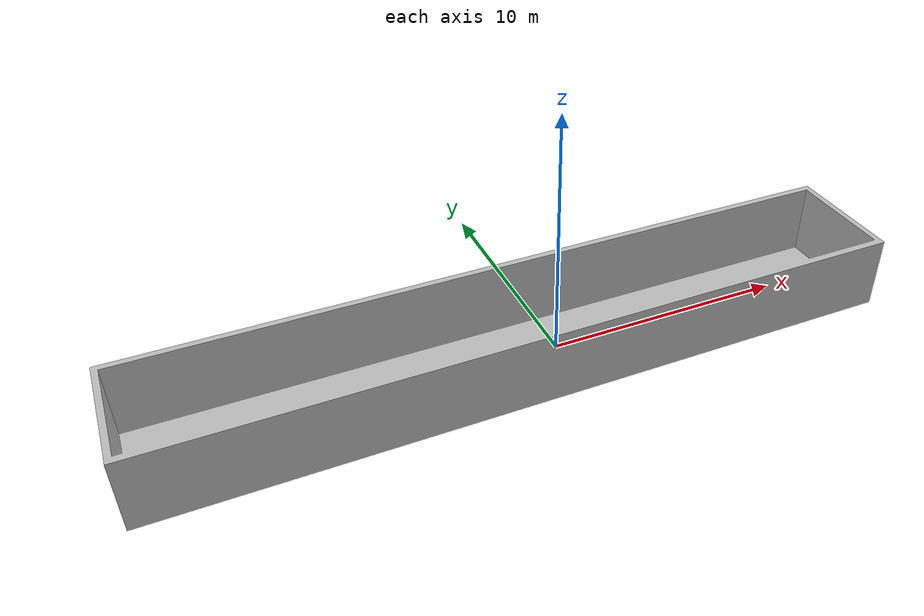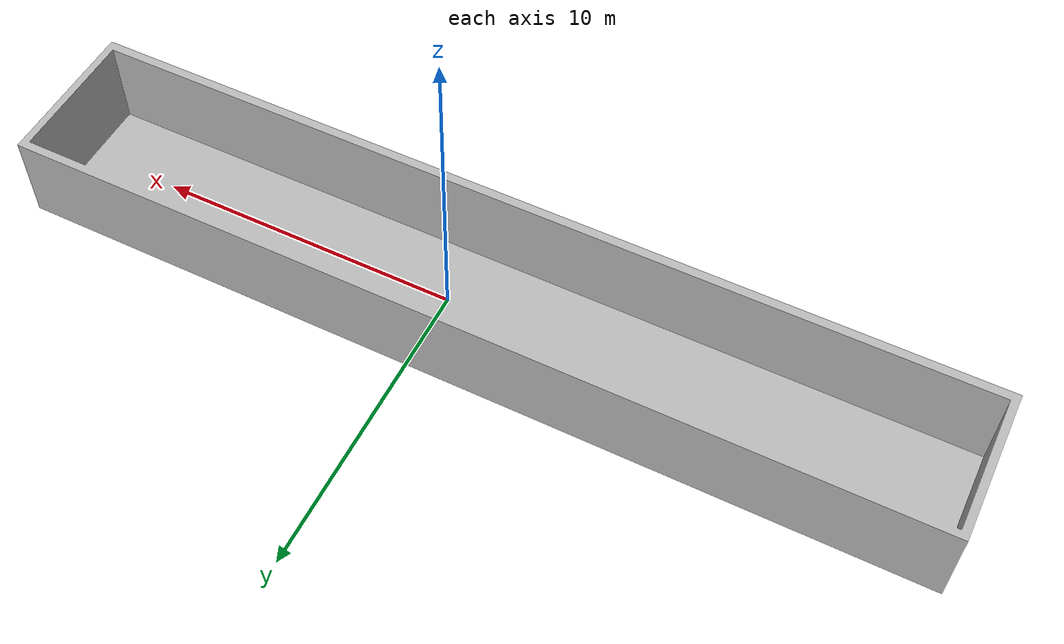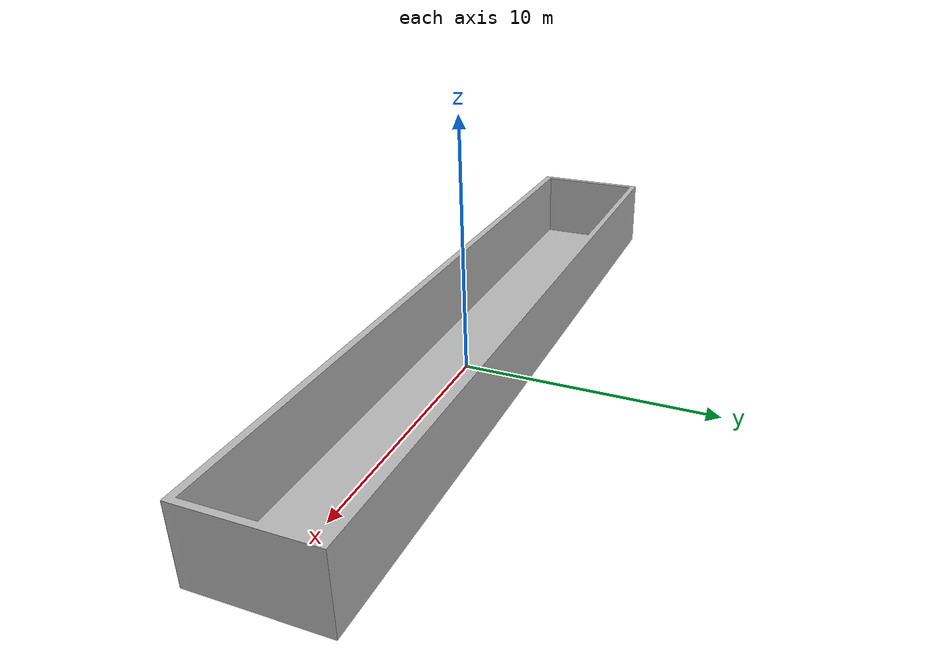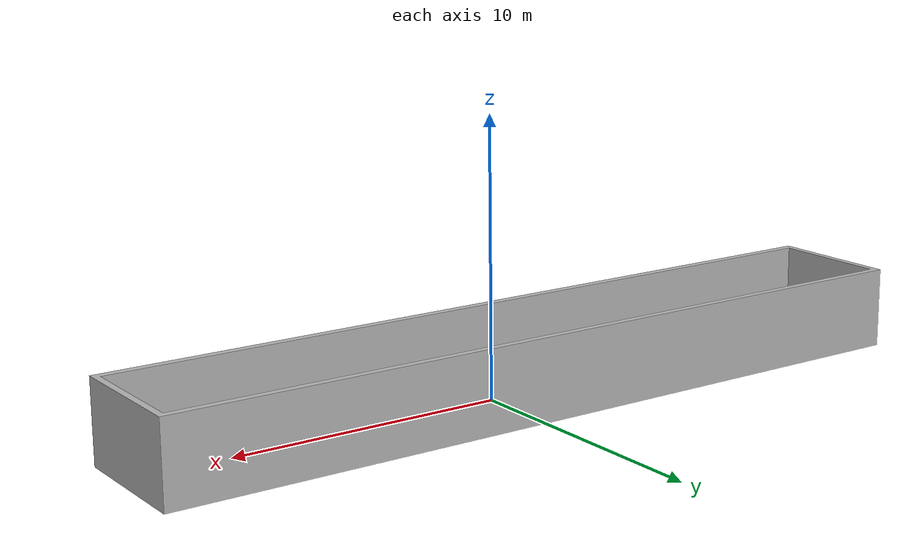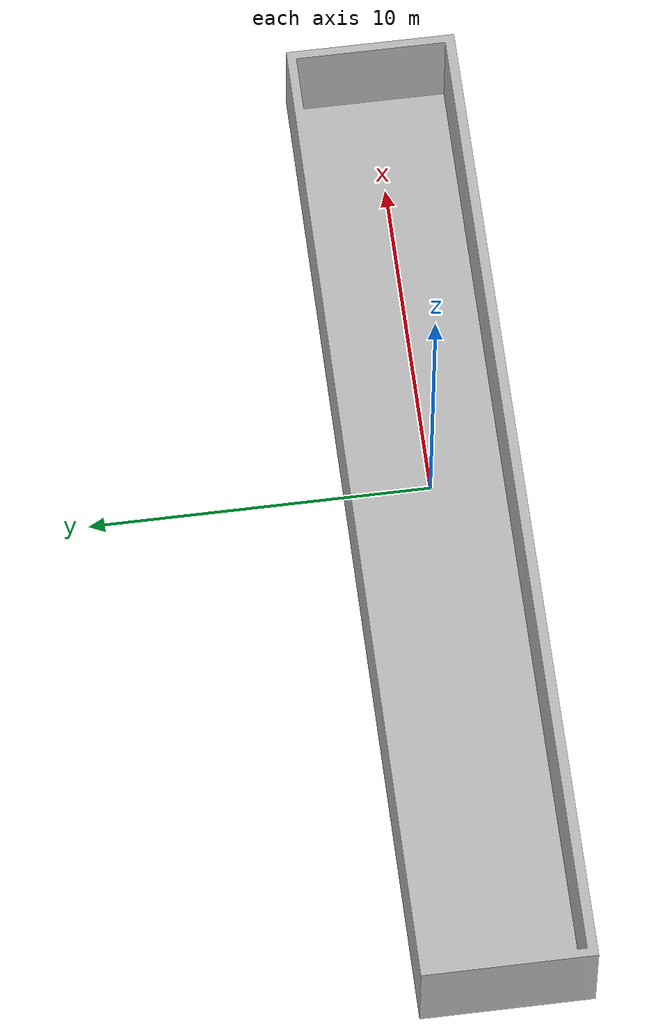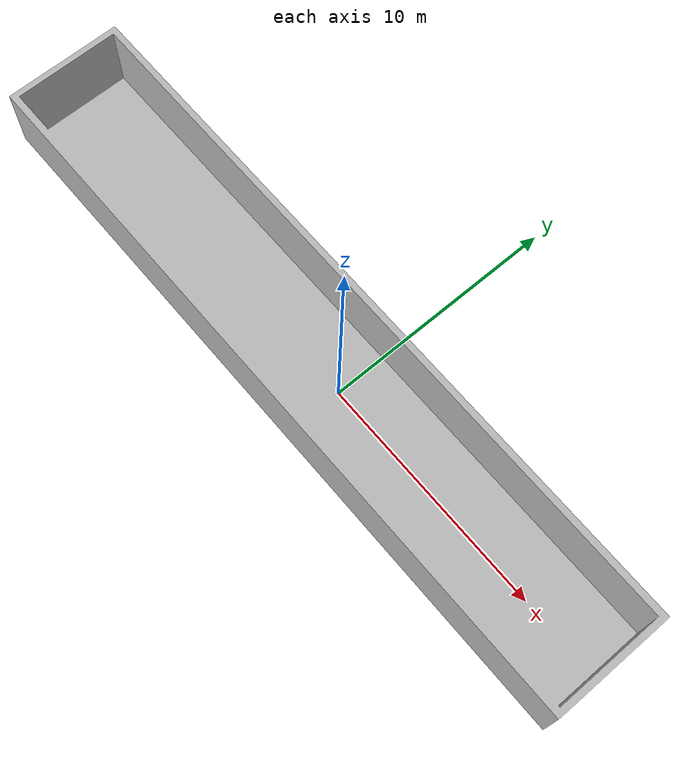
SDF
<sdf version="1.7">
 <world name="world">
  <scene>
   <ambient>0.8 0.8 0.8 1</ambient>
   <background>0 0 0 1</background>
   <grid>0</grid>
   <shadows>0</shadows>
  </scene>
  <light name="sun" type="directional">
   <cast_shadows>0</cast_shadows>
   <pose>0 0 10 0 -0 0</pose>
   <diffuse>0.8 0.8 0.8 1</diffuse>
   <specular>0.2 0.2 0.2 1</specular>
   <attenuation>
    <range>1000</range>
    <constant>0.9</constant>
    <linear>0.01</linear>
    <quadratic>0.001</quadratic>
   </attenuation>
   <direction>-0.5 0.1 -0.9</direction>
   <spot><inner_angle>0</inner_angle><outer_angle>0</outer_angle><falloff>0</falloff></spot>
  </light>
  <model name="arena_corridor">
   <static>1</static>
   <link name="floor_1">
    <visual name="visual">
     <pose>0 0 -0.25 0 -0 0</pose>
     <geometry><mesh><uri>model://arena_corridor/meshes/arena_corridor.obj</uri></mesh></geometry>
    </visual>
    <collision name="collision">
     <pose>0 0 -0.25 0 -0 0</pose>
     <geometry><mesh><uri>model://arena_corridor/meshes/arena_corridor.obj</uri></mesh></geometry>
    </collision>
   </link>
   <pose>-0.028104 0.02544 0 0 -0 0</pose>
  </model>
  <gravity>0 0 -9.8</gravity>
  <magnetic_field>6e-06 2.3e-05 -4.2e-05</magnetic_field>
  <atmosphere type="adiabatic"/>
  <physics type="ode">
   <max_step_size>0.001</max_step_size>
   <real_time_factor>1</real_time_factor>
   <real_time_update_rate>1000</real_time_update_rate>
  </physics>
  <spherical_coordinates>
   <surface_model>EARTH_WGS84</surface_model>
   <latitude_deg>0</latitude_deg>
   <longitude_deg>0</longitude_deg>
   <elevation>0</elevation>
   <heading_deg>0</heading_deg>
  </spherical_coordinates>
  <rmf_charger_waypoints name="charger_waypoints">
   <rmf_vertex name="side_road" x="22160.047839565384" y="31339.55091437469" level="L1"/>
   <rmf_vertex name="room_2" x="22218.54745099393" y="31365.736378304442" level="L1"/>
   <rmf_vertex name="room_5" x="22119.377976544125" y="31427.34127980414" level="L1"/>
   <rmf_vertex name="room_6" x="22109.921071506964" y="31413.46991680738" level="L1"/>
  </rmf_charger_waypoints>
  <offset>22000 31500 0 0 0 0</offset>
  <crs>EPSG:3414</crs>
 </world>
</sdf>
